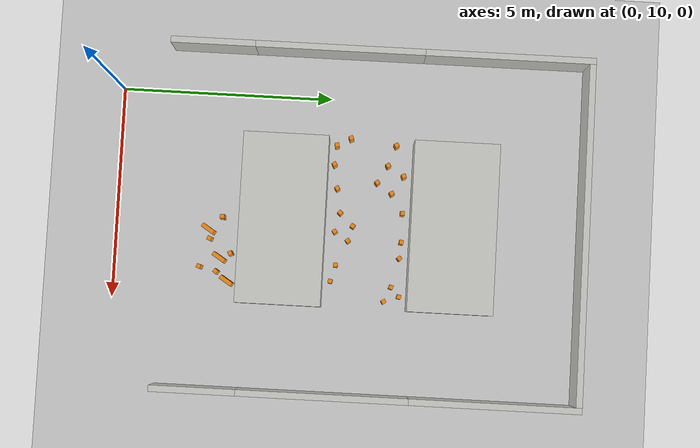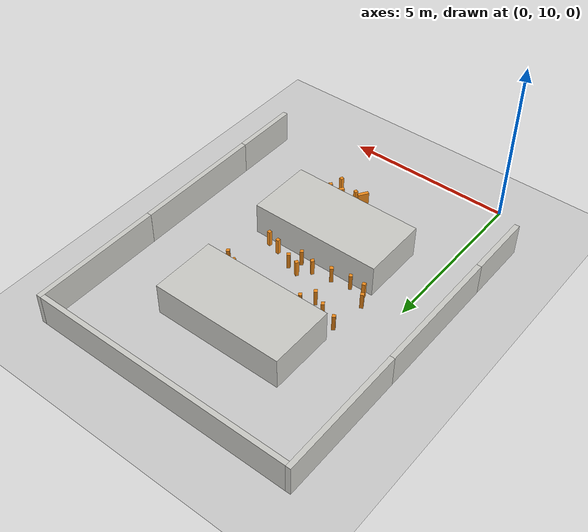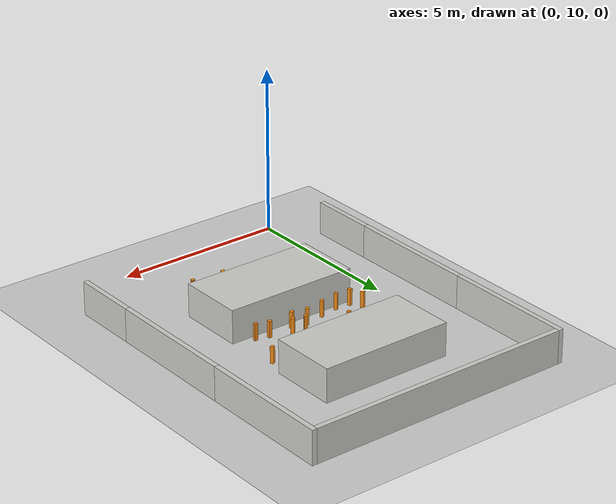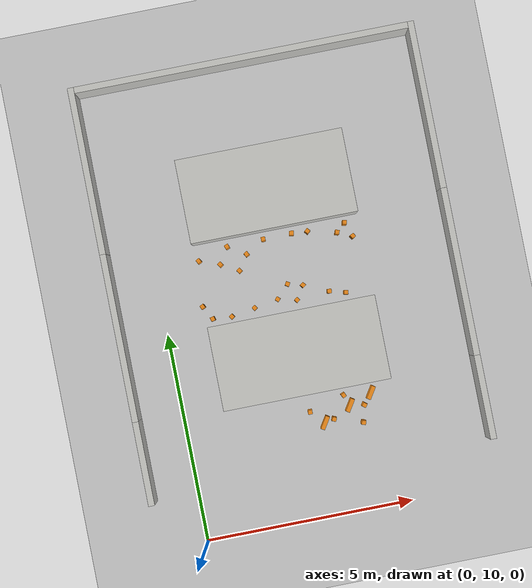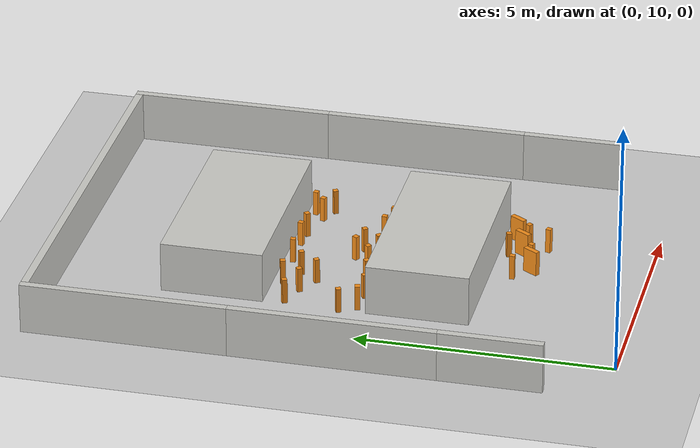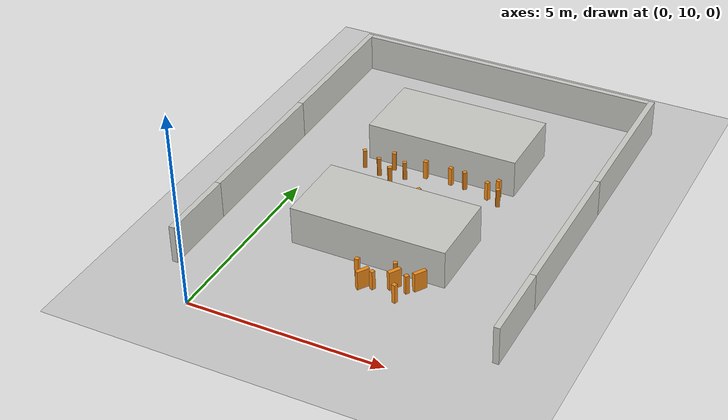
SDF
<sdf version="1.6">
 <world name="default">
  <model name="ground_plane">
   <static>1</static>
   <link name="link">
    <collision name="collision">
     <geometry><plane><normal>0 0 1</normal><size>100 100</size></plane></geometry>
     <surface><friction><ode><mu>100</mu><mu2>50</mu2></ode></friction></surface>
    </collision>
    <visual name="visual">
     <cast_shadows>0</cast_shadows>
     <geometry><plane><normal>0 0 1</normal><size>100 100</size></plane></geometry>
     <material>
      <script><uri>file://media/materials/scripts/concrete.material</uri><name>Concrete/1</name></script>
     </material>
    </visual>
   </link>
  </model>
  <model name="block_2x4m_clone_clone">
   <pose>3 14 0 0 0 -1.5708</pose>
   <link name="Block">
    <collision name="Block_Collision">
     <geometry><box><size>2 4 1</size></box></geometry>
     <pose>0 0 0.5 0 -0 0</pose>
    </collision>
    <visual name="Block_Visual">
     <pose>0 0 0.5 0 -0 0</pose>
     <geometry><box><size>2 4 1</size></box></geometry>
     <material>
      <script><uri>file://media/materials/scripts/gazebo.material</uri><name>Gazebo/CeilingTiled</name></script>
      <ambient>1 0.764706 0.305882 1</ambient>
     </material>
    </visual>
   </link>
   <static>1</static>
  </model>
  <model name="block_2x4m_clone_clone_0">
   <pose>3 18 0 0 0 -1.5708</pose>
   <link name="Block">
    <collision name="Block_Collision">
     <geometry><box><size>2 4 1</size></box></geometry>
     <pose>0 0 0.5 0 -0 0</pose>
    </collision>
    <visual name="Block_Visual">
     <pose>0 0 0.5 0 -0 0</pose>
     <geometry><box><size>2 4 1</size></box></geometry>
     <material>
      <script><uri>file://media/materials/scripts/gazebo.material</uri><name>Gazebo/CeilingTiled</name></script>
      <ambient>1 0.764706 0.305882 1</ambient>
     </material>
    </visual>
   </link>
   <static>1</static>
  </model>
  <model name="wall_8meter_clone">
   <static>1</static>
   <pose>3 21.075 0 0 -0 0</pose>
   <link name="Wall">
    <collision name="Wall_Collision">
     <geometry><box><size>8 0.15 1</size></box></geometry>
     <pose>0 0 0.5 0 -0 0</pose>
    </collision>
    <visual name="Wall_Visual">
     <pose>0 0 0.5 0 -0 0</pose>
     <geometry><box><size>8 0.15 1</size></box></geometry>
     <material>
      <script><uri>file://media/materials/scripts/gazebo.material</uri><name>Gazebo/CeilingTiled</name></script>
      <ambient>1 0.764706 0.305882 1</ambient>
     </material>
    </visual>
   </link>
  </model>
  <model name="wall_4meter_clone_clone_0">
   <static>1</static>
   <pose>7.07501 15.1472 0 0 0 -1.5708</pose>
   <link name="Wall">
    <collision name="Wall_Collision">
     <geometry><box><size>4 0.15 1</size></box></geometry>
     <pose>0 0 0.5 0 -0 0</pose>
    </collision>
    <visual name="Wall_Visual">
     <pose>0 0 0.5 0 -0 0</pose>
     <geometry><box><size>4 0.15 1</size></box></geometry>
     <material>
      <script><uri>file://media/materials/scripts/gazebo.material</uri><name>Gazebo/CeilingTiled</name></script>
      <ambient>1 0.764706 0.305882 1</ambient>
     </material>
    </visual>
   </link>
  </model>
  <model name="wall_4meter_clone_clone_1">
   <static>1</static>
   <pose>7.07501 19.1477 0 0 0 -1.5708</pose>
   <link name="Wall">
    <collision name="Wall_Collision">
     <geometry><box><size>4 0.15 1</size></box></geometry>
     <pose>0 0 0.5 0 -0 0</pose>
    </collision>
    <visual name="Wall_Visual">
     <pose>0 0 0.5 0 -0 0</pose>
     <geometry><box><size>4 0.15 1</size></box></geometry>
     <material>
      <script><uri>file://media/materials/scripts/gazebo.material</uri><name>Gazebo/CeilingTiled</name></script>
      <ambient>1 0.764706 0.305882 1</ambient>
     </material>
    </visual>
   </link>
  </model>
  <model name="wall_2meter_clone_0">
   <static>1</static>
   <pose>7.075 12.1484 0 0 0 -1.5708</pose>
   <link name="Wall">
    <collision name="Wall_Collision">
     <geometry><box><size>2 0.15 1</size></box></geometry>
     <pose>0 0 0.5 0 -0 0</pose>
    </collision>
    <visual name="Wall_Visual">
     <pose>0 0 0.5 0 -0 0</pose>
     <geometry><box><size>2 0.15 1</size></box></geometry>
     <material>
      <script><uri>file://media/materials/scripts/gazebo.material</uri><name>Gazebo/CeilingTiled</name></script>
      <ambient>1 0.764706 0.305882 1</ambient>
     </material>
    </visual>
   </link>
  </model>
  <model name="wall_4meter_clone_0_clone_0">
   <static>1</static>
   <pose>-1.075 19.1493 0 0 0 -1.5708</pose>
   <link name="Wall">
    <collision name="Wall_Collision">
     <geometry><box><size>4 0.15 1</size></box></geometry>
     <pose>0 0 0.5 0 -0 0</pose>
    </collision>
    <visual name="Wall_Visual">
     <pose>0 0 0.5 0 -0 0</pose>
     <geometry><box><size>4 0.15 1</size></box></geometry>
     <material>
      <script><uri>file://media/materials/scripts/gazebo.material</uri><name>Gazebo/CeilingTiled</name></script>
      <ambient>1 0.764706 0.305882 1</ambient>
     </material>
    </visual>
   </link>
  </model>
  <model name="wall_4meter_clone_0_clone_1">
   <static>1</static>
   <pose>-1.075 15.1546 0 0 0 -1.5708</pose>
   <link name="Wall">
    <collision name="Wall_Collision">
     <geometry><box><size>4 0.15 1</size></box></geometry>
     <pose>0 0 0.5 0 -0 0</pose>
    </collision>
    <visual name="Wall_Visual">
     <pose>0 0 0.5 0 -0 0</pose>
     <geometry><box><size>4 0.15 1</size></box></geometry>
     <material>
      <script><uri>file://media/materials/scripts/gazebo.material</uri><name>Gazebo/CeilingTiled</name></script>
      <ambient>1 0.764706 0.305882 1</ambient>
     </material>
    </visual>
   </link>
  </model>
  <model name="wall_2meter_clone_0_clone">
   <static>1</static>
   <pose>-1.075 12.1627 0 0 0 -1.5708</pose>
   <link name="Wall">
    <collision name="Wall_Collision">
     <geometry><box><size>2 0.15 1</size></box></geometry>
     <pose>0 0 0.5 0 -0 0</pose>
    </collision>
    <visual name="Wall_Visual">
     <pose>0 0 0.5 0 -0 0</pose>
     <geometry><box><size>2 0.15 1</size></box></geometry>
     <material>
      <script><uri>file://media/materials/scripts/gazebo.material</uri><name>Gazebo/CeilingTiled</name></script>
      <ambient>1 0.764706 0.305882 1</ambient>
     </material>
    </visual>
   </link>
  </model>
  <model name="caution_10cm_pillar_0_clone">
   <static>1</static>
   <pose>3.51806 12.2885 0 0 0 -0.396271</pose>
   <static>1</static>
   <link name="Pillar">
    <collision name="Pillar_Collision">
     <geometry><box><size>0.1 0.1 0.5</size></box></geometry>
     <pose>0 0 0.25 0 -0 0</pose>
    </collision>
    <visual name="Pillar_Visual">
     <pose>0 0 0.25 0 -0 0</pose>
     <geometry><box><size>0.1 0.1 0.5</size></box></geometry>
     <material>
      <script><uri>file://media/materials/scripts/caution.material</uri><name>Caution/Orange3</name></script>
      <ambient>1 1 1 1</ambient>
     </material>
    </visual>
   </link>
  </model>
  <model name="caution_10cm_pillar_0_clone_1">
   <static>1</static>
   <pose>4.28892 12.4819 0 0 -0 0.930238</pose>
   <static>1</static>
   <link name="Pillar">
    <collision name="Pillar_Collision">
     <geometry><box><size>0.1 0.1 0.5</size></box></geometry>
     <pose>0 0 0.25 0 -0 0</pose>
    </collision>
    <visual name="Pillar_Visual">
     <pose>0 0 0.25 0 -0 0</pose>
     <geometry><box><size>0.1 0.1 0.5</size></box></geometry>
     <material>
      <script><uri>file://media/materials/scripts/caution.material</uri><name>Caution/Orange3</name></script>
      <ambient>1 1 1 1</ambient>
     </material>
    </visual>
   </link>
  </model>
  <model name="caution_10cm_pillar_0_clone_3">
   <static>1</static>
   <pose>4.18945 12.0769 0 0 -0 1.2547</pose>
   <static>1</static>
   <link name="Pillar">
    <collision name="Pillar_Collision">
     <geometry><box><size>0.1 0.1 0.5</size></box></geometry>
     <pose>0 0 0.25 0 -0 0</pose>
    </collision>
    <visual name="Pillar_Visual">
     <pose>0 0 0.25 0 -0 0</pose>
     <geometry><box><size>0.1 0.1 0.5</size></box></geometry>
     <material>
      <script><uri>file://media/materials/scripts/caution.material</uri><name>Caution/Orange3</name></script>
      <ambient>1 1 1 1</ambient>
     </material>
    </visual>
   </link>
  </model>
  <model name="caution_10cm_pillar_0_clone_5">
   <static>1</static>
   <pose>2.98802 12.5613 0 0 -0 0</pose>
   <static>1</static>
   <link name="Pillar">
    <collision name="Pillar_Collision">
     <geometry><box><size>0.1 0.1 0.5</size></box></geometry>
     <pose>0 0 0.25 0 -0 0</pose>
    </collision>
    <visual name="Pillar_Visual">
     <pose>0 0 0.25 0 -0 0</pose>
     <geometry><box><size>0.1 0.1 0.5</size></box></geometry>
     <material>
      <script><uri>file://media/materials/scripts/caution.material</uri><name>Caution/Orange3</name></script>
      <ambient>1 1 1 1</ambient>
     </material>
    </visual>
   </link>
  </model>
  <model name="caution_10cm_pillar_0_clone_9">
   <static>1</static>
   <pose>3.84622 12.7994 0 0 -0 0.430905</pose>
   <static>1</static>
   <link name="Pillar">
    <collision name="Pillar_Collision">
     <geometry><box><size>0.1 0.1 0.5</size></box></geometry>
     <pose>0 0 0.25 0 -0 0</pose>
    </collision>
    <visual name="Pillar_Visual">
     <pose>0 0 0.25 0 -0 0</pose>
     <geometry><box><size>0.1 0.1 0.5</size></box></geometry>
     <material>
      <script><uri>file://media/materials/scripts/caution.material</uri><name>Caution/Orange3</name></script>
      <ambient>1 1 1 1</ambient>
     </material>
    </visual>
   </link>
  </model>
  <model name="caution_10cm_pillar_0_clone_11">
   <static>1</static>
   <pose>3.99201 15.2936 0 0 0 -0.088759</pose>
   <static>1</static>
   <link name="Pillar">
    <collision name="Pillar_Collision">
     <geometry><box><size>0.1 0.1 0.5</size></box></geometry>
     <pose>0 0 0.25 0 -0 0</pose>
    </collision>
    <visual name="Pillar_Visual">
     <pose>0 0 0.25 0 -0 0</pose>
     <geometry><box><size>0.1 0.1 0.5</size></box></geometry>
     <material>
      <script><uri>file://media/materials/scripts/caution.material</uri><name>Caution/Orange3</name></script>
      <ambient>1 1 1 1</ambient>
     </material>
    </visual>
   </link>
  </model>
  <model name="caution_10cm_pillar_0_clone_12">
   <static>1</static>
   <pose>3.40508 15.5558 0 0 0 -0.927206</pose>
   <static>1</static>
   <link name="Pillar">
    <collision name="Pillar_Collision">
     <geometry><box><size>0.1 0.1 0.5</size></box></geometry>
     <pose>0 0 0.25 0 -0 0</pose>
    </collision>
    <visual name="Pillar_Visual">
     <pose>0 0 0.25 0 -0 0</pose>
     <geometry><box><size>0.1 0.1 0.5</size></box></geometry>
     <material>
      <script><uri>file://media/materials/scripts/caution.material</uri><name>Caution/Orange3</name></script>
      <ambient>1 1 1 1</ambient>
     </material>
    </visual>
   </link>
  </model>
  <model name="caution_10cm_pillar_0_clone_13">
   <static>1</static>
   <pose>4.4461 16.6311 0 0 0 -0.336315</pose>
   <static>1</static>
   <link name="Pillar">
    <collision name="Pillar_Collision">
     <geometry><box><size>0.1 0.1 0.5</size></box></geometry>
     <pose>0 0 0.25 0 -0 0</pose>
    </collision>
    <visual name="Pillar_Visual">
     <pose>0 0 0.25 0 -0 0</pose>
     <geometry><box><size>0.1 0.1 0.5</size></box></geometry>
     <material>
      <script><uri>file://media/materials/scripts/caution.material</uri><name>Caution/Orange3</name></script>
      <ambient>1 1 1 1</ambient>
     </material>
    </visual>
   </link>
  </model>
  <model name="caution_10cm_pillar_0_clone_14">
   <static>1</static>
   <pose>2.68765 16.8121 0 0 -0 0.020263</pose>
   <static>1</static>
   <link name="Pillar">
    <collision name="Pillar_Collision">
     <geometry><box><size>0.1 0.1 0.5</size></box></geometry>
     <pose>0 0 0.25 0 -0 0</pose>
    </collision>
    <visual name="Pillar_Visual">
     <pose>0 0 0.25 0 -0 0</pose>
     <geometry><box><size>0.1 0.1 0.5</size></box></geometry>
     <material>
      <script><uri>file://media/materials/scripts/caution.material</uri><name>Caution/Orange3</name></script>
      <ambient>1 1 1 1</ambient>
     </material>
    </visual>
   </link>
  </model>
  <model name="caution_10cm_pillar_0_clone_15">
   <static>1</static>
   <pose>2.23154 16.5356 0 0 0 -1.04351</pose>
   <static>1</static>
   <link name="Pillar">
    <collision name="Pillar_Collision">
     <geometry><box><size>0.1 0.1 0.5</size></box></geometry>
     <pose>0 0 0.25 0 -0 0</pose>
    </collision>
    <visual name="Pillar_Visual">
     <pose>0 0 0.25 0 -0 0</pose>
     <geometry><box><size>0.1 0.1 0.5</size></box></geometry>
     <material>
      <script><uri>file://media/materials/scripts/caution.material</uri><name>Caution/Orange3</name></script>
      <ambient>1 1 1 1</ambient>
     </material>
    </visual>
   </link>
  </model>
  <model name="caution_10cm_pillar_0_clone_16">
   <static>1</static>
   <pose>1.9883 16.1807 0 0 0 -0.938497</pose>
   <static>1</static>
   <link name="Pillar">
    <collision name="Pillar_Collision">
     <geometry><box><size>0.1 0.1 0.5</size></box></geometry>
     <pose>0 0 0.25 0 -0 0</pose>
    </collision>
    <visual name="Pillar_Visual">
     <pose>0 0 0.25 0 -0 0</pose>
     <geometry><box><size>0.1 0.1 0.5</size></box></geometry>
     <material>
      <script><uri>file://media/materials/scripts/caution.material</uri><name>Caution/Orange3</name></script>
      <ambient>1 1 1 1</ambient>
     </material>
    </visual>
   </link>
  </model>
  <model name="caution_10cm_pillar_0_clone_17">
   <static>1</static>
   <pose>2.17462 15.2407 0 0 0 -0.943281</pose>
   <static>1</static>
   <link name="Pillar">
    <collision name="Pillar_Collision">
     <geometry><box><size>0.1 0.1 0.5</size></box></geometry>
     <pose>0 0 0.25 0 -0 0</pose>
    </collision>
    <visual name="Pillar_Visual">
     <pose>0 0 0.25 0 -0 0</pose>
     <geometry><box><size>0.1 0.1 0.5</size></box></geometry>
     <material>
      <script><uri>file://media/materials/scripts/caution.material</uri><name>Caution/Orange3</name></script>
      <ambient>1 1 1 1</ambient>
     </material>
    </visual>
   </link>
  </model>
  <model name="caution_10cm_pillar_0_clone_18">
   <static>1</static>
   <pose>2.7519 15.3402 0 0 0 -2.28576</pose>
   <static>1</static>
   <link name="Pillar">
    <collision name="Pillar_Collision">
     <geometry><box><size>0.1 0.1 0.5</size></box></geometry>
     <pose>0 0 0.25 0 -0 0</pose>
    </collision>
    <visual name="Pillar_Visual">
     <pose>0 0 0.25 0 -0 0</pose>
     <geometry><box><size>0.1 0.1 0.5</size></box></geometry>
     <material>
      <script><uri>file://media/materials/scripts/caution.material</uri><name>Caution/Orange3</name></script>
      <ambient>1 1 1 1</ambient>
     </material>
    </visual>
   </link>
  </model>
  <model name="caution_10cm_pillar_0_clone_19">
   <static>1</static>
   <pose>3.20286 15.2339 0 0 0 -2.5099</pose>
   <static>1</static>
   <link name="Pillar">
    <collision name="Pillar_Collision">
     <geometry><box><size>0.1 0.1 0.5</size></box></geometry>
     <pose>0 0 0.25 0 -0 0</pose>
    </collision>
    <visual name="Pillar_Visual">
     <pose>0 0 0.25 0 -0 0</pose>
     <geometry><box><size>0.1 0.1 0.5</size></box></geometry>
     <material>
      <script><uri>file://media/materials/scripts/caution.material</uri><name>Caution/Orange3</name></script>
      <ambient>1 1 1 1</ambient>
     </material>
    </visual>
   </link>
  </model>
  <model name="caution_10cm_pillar_0_clone_20">
   <static>1</static>
   <pose>3.75783 16.7938 0 0 0 -0.857549</pose>
   <static>1</static>
   <link name="Pillar">
    <collision name="Pillar_Collision">
     <geometry><box><size>0.1 0.1 0.5</size></box></geometry>
     <pose>0 0 0.25 0 -0 0</pose>
    </collision>
    <visual name="Pillar_Visual">
     <pose>0 0 0.25 0 -0 0</pose>
     <geometry><box><size>0.1 0.1 0.5</size></box></geometry>
     <material>
      <script><uri>file://media/materials/scripts/caution.material</uri><name>Caution/Orange3</name></script>
      <ambient>1 1 1 1</ambient>
     </material>
    </visual>
   </link>
  </model>
  <model name="caution_10cm_pillar_0_clone_21">
   <static>1</static>
   <pose>4.79541 16.4711 0 0 0 -1.04189</pose>
   <static>1</static>
   <link name="Pillar">
    <collision name="Pillar_Collision">
     <geometry><box><size>0.1 0.1 0.5</size></box></geometry>
     <pose>0 0 0.25 0 -0 0</pose>
    </collision>
    <visual name="Pillar_Visual">
     <pose>0 0 0.25 0 -0 0</pose>
     <geometry><box><size>0.1 0.1 0.5</size></box></geometry>
     <material>
      <script><uri>file://media/materials/scripts/caution.material</uri><name>Caution/Orange3</name></script>
      <ambient>1 1 1 1</ambient>
     </material>
    </visual>
   </link>
  </model>
  <model name="caution_10cm_pillar_0_clone_22">
   <static>1</static>
   <pose>4.66382 16.8266 0 0 0 -1.7993</pose>
   <static>1</static>
   <link name="Pillar">
    <collision name="Pillar_Collision">
     <geometry><box><size>0.1 0.1 0.5</size></box></geometry>
     <pose>0 0 0.25 0 -0 0</pose>
    </collision>
    <visual name="Pillar_Visual">
     <pose>0 0 0.25 0 -0 0</pose>
     <geometry><box><size>0.1 0.1 0.5</size></box></geometry>
     <material>
      <script><uri>file://media/materials/scripts/caution.material</uri><name>Caution/Orange3</name></script>
      <ambient>1 1 1 1</ambient>
     </material>
    </visual>
   </link>
  </model>
  <model name="caution_10cm_pillar_0_clone_23">
   <static>1</static>
   <pose>1.14668 15.1791 0 0 0 -1.34455</pose>
   <static>1</static>
   <link name="Pillar">
    <collision name="Pillar_Collision">
     <geometry><box><size>0.1 0.1 0.5</size></box></geometry>
     <pose>0 0 0.25 0 -0 0</pose>
    </collision>
    <visual name="Pillar_Visual">
     <pose>0 0 0.25 0 -0 0</pose>
     <geometry><box><size>0.1 0.1 0.5</size></box></geometry>
     <material>
      <script><uri>file://media/materials/scripts/caution.material</uri><name>Caution/Orange3</name></script>
      <ambient>1 1 1 1</ambient>
     </material>
    </visual>
   </link>
  </model>
  <model name="caution_10cm_pillar_0_clone_24">
   <static>1</static>
   <pose>0.964754 15.5101 0 0 0 -1.14517</pose>
   <static>1</static>
   <link name="Pillar">
    <collision name="Pillar_Collision">
     <geometry><box><size>0.1 0.1 0.5</size></box></geometry>
     <pose>0 0 0.25 0 -0 0</pose>
    </collision>
    <visual name="Pillar_Visual">
     <pose>0 0 0.25 0 -0 0</pose>
     <geometry><box><size>0.1 0.1 0.5</size></box></geometry>
     <material>
      <script><uri>file://media/materials/scripts/caution.material</uri><name>Caution/Orange3</name></script>
      <ambient>1 1 1 1</ambient>
     </material>
    </visual>
   </link>
  </model>
  <model name="caution_10cm_pillar_0_clone_25">
   <static>1</static>
   <pose>1.60712 15.1463 0 0 -0 0.571525</pose>
   <static>1</static>
   <link name="Pillar">
    <collision name="Pillar_Collision">
     <geometry><box><size>0.1 0.1 0.5</size></box></geometry>
     <pose>0 0 0.25 0 -0 0</pose>
    </collision>
    <visual name="Pillar_Visual">
     <pose>0 0 0.25 0 -0 0</pose>
     <geometry><box><size>0.1 0.1 0.5</size></box></geometry>
     <material>
      <script><uri>file://media/materials/scripts/caution.material</uri><name>Caution/Orange3</name></script>
      <ambient>1 1 1 1</ambient>
     </material>
    </visual>
   </link>
  </model>
  <model name="caution_10cm_pillar_0_clone_26">
   <static>1</static>
   <pose>3.37462 16.8198 0 0 0 -0.186678</pose>
   <static>1</static>
   <link name="Pillar">
    <collision name="Pillar_Collision">
     <geometry><box><size>0.1 0.1 0.5</size></box></geometry>
     <pose>0 0 0.25 0 -0 0</pose>
    </collision>
    <visual name="Pillar_Visual">
     <pose>0 0 0.25 0 -0 0</pose>
     <geometry><box><size>0.1 0.1 0.5</size></box></geometry>
     <material>
      <script><uri>file://media/materials/scripts/caution.material</uri><name>Caution/Orange3</name></script>
      <ambient>1 1 1 1</ambient>
     </material>
    </visual>
   </link>
  </model>
  <model name="caution_10cm_pillar_0_clone_27">
   <static>1</static>
   <pose>1.57083 16.4187 0 0 0 -0.976303</pose>
   <static>1</static>
   <link name="Pillar">
    <collision name="Pillar_Collision">
     <geometry><box><size>0.1 0.1 0.5</size></box></geometry>
     <pose>0 0 0.25 0 -0 0</pose>
    </collision>
    <visual name="Pillar_Visual">
     <pose>0 0 0.25 0 -0 0</pose>
     <geometry><box><size>0.1 0.1 0.5</size></box></geometry>
     <material>
      <script><uri>file://media/materials/scripts/caution.material</uri><name>Caution/Orange3</name></script>
      <ambient>1 1 1 1</ambient>
     </material>
    </visual>
   </link>
  </model>
  <model name="caution_10cm_pillar_0_clone_28">
   <static>1</static>
   <pose>1.08232 16.5921 0 0 -0 0.506887</pose>
   <static>1</static>
   <link name="Pillar">
    <collision name="Pillar_Collision">
     <geometry><box><size>0.1 0.1 0.5</size></box></geometry>
     <pose>0 0 0.25 0 -0 0</pose>
    </collision>
    <visual name="Pillar_Visual">
     <pose>0 0 0.25 0 -0 0</pose>
     <geometry><box><size>0.1 0.1 0.5</size></box></geometry>
     <material>
      <script><uri>file://media/materials/scripts/caution.material</uri><name>Caution/Orange3</name></script>
      <ambient>1 1 1 1</ambient>
     </material>
    </visual>
   </link>
  </model>
  <model name="caution_10cm_pillar_0_clone_29">
   <static>1</static>
   <pose>1.80736 16.8002 0 0 0 -1.2202</pose>
   <static>1</static>
   <link name="Pillar">
    <collision name="Pillar_Collision">
     <geometry><box><size>0.1 0.1 0.5</size></box></geometry>
     <pose>0 0 0.25 0 -0 0</pose>
    </collision>
    <visual name="Pillar_Visual">
     <pose>0 0 0.25 0 -0 0</pose>
     <geometry><box><size>0.1 0.1 0.5</size></box></geometry>
     <material>
      <script><uri>file://media/materials/scripts/caution.material</uri><name>Caution/Orange3</name></script>
      <ambient>1 1 1 1</ambient>
     </material>
    </visual>
   </link>
  </model>
  <model name="caution_10cm_pillar_0_clone_30">
   <static>1</static>
   <pose>3.05091 15.651 0 0 0 -2.10805</pose>
   <static>1</static>
   <link name="Pillar">
    <collision name="Pillar_Collision">
     <geometry><box><size>0.1 0.1 0.5</size></box></geometry>
     <pose>0 0 0.25 0 -0 0</pose>
    </collision>
    <visual name="Pillar_Visual">
     <pose>0 0 0.25 0 -0 0</pose>
     <geometry><box><size>0.1 0.1 0.5</size></box></geometry>
     <material>
      <script><uri>file://media/materials/scripts/caution.material</uri><name>Caution/Orange3</name></script>
      <ambient>1 1 1 1</ambient>
     </material>
    </visual>
   </link>
  </model>
  <model name="caution_10cm_pillar_0_clone_31">
   <static>1</static>
   <pose>4.37865 15.1881 0 0 0 -0.165633</pose>
   <static>1</static>
   <link name="Pillar">
    <collision name="Pillar_Collision">
     <geometry><box><size>0.1 0.1 0.5</size></box></geometry>
     <pose>0 0 0.25 0 -0 0</pose>
    </collision>
    <visual name="Pillar_Visual">
     <pose>0 0 0.25 0 -0 0</pose>
     <geometry><box><size>0.1 0.1 0.5</size></box></geometry>
     <material>
      <script><uri>file://media/materials/scripts/caution.material</uri><name>Caution/Orange3</name></script>
      <ambient>1 1 1 1</ambient>
     </material>
    </visual>
   </link>
  </model>
  <model name="caution_33cm_wall">
   <static>1</static>
   <pose>3.95199 12.5376 0 0 -0 1.00279</pose>
   <static>1</static>
   <link name="Wall">
    <collision name="Wall_Collision">
     <geometry><box><size>0.33 0.1 0.5</size></box></geometry>
     <pose>0 0 0.25 0 -0 0</pose>
    </collision>
    <visual name="Wall_Visual">
     <pose>0 0 0.25 0 -0 0</pose>
     <geometry><box><size>0.33 0.1 0.5</size></box></geometry>
     <material>
      <script><uri>file://media/materials/scripts/caution.material</uri><name>Caution/Orange4</name></script>
      <ambient>1 1 1 1</ambient>
     </material>
    </visual>
   </link>
  </model>
  <model name="caution_33cm_wall_clone">
   <static>1</static>
   <pose>3.29189 12.2447 0 0 -0 1.00279</pose>
   <static>1</static>
   <link name="Wall">
    <collision name="Wall_Collision">
     <geometry><box><size>0.33 0.1 0.5</size></box></geometry>
     <pose>0 0 0.25 0 -0 0</pose>
    </collision>
    <visual name="Wall_Visual">
     <pose>0 0 0.25 0 -0 0</pose>
     <geometry><box><size>0.33 0.1 0.5</size></box></geometry>
     <material>
      <script><uri>file://media/materials/scripts/caution.material</uri><name>Caution/Orange4</name></script>
      <ambient>1 1 1 1</ambient>
     </material>
    </visual>
   </link>
  </model>
  <model name="caution_33cm_wall_clone_3">
   <static>1</static>
   <pose>4.49648 12.7371 0 0 -0 1.00279</pose>
   <static>1</static>
   <link name="Wall">
    <collision name="Wall_Collision">
     <geometry><box><size>0.33 0.1 0.5</size></box></geometry>
     <pose>0 0 0.25 0 -0 0</pose>
    </collision>
    <visual name="Wall_Visual">
     <pose>0 0 0.25 0 -0 0</pose>
     <geometry><box><size>0.33 0.1 0.5</size></box></geometry>
     <material>
      <script><uri>file://media/materials/scripts/caution.material</uri><name>Caution/Orange4</name></script>
      <ambient>1 1 1 1</ambient>
     </material>
    </visual>
   </link>
  </model>
 </world>
</sdf>
